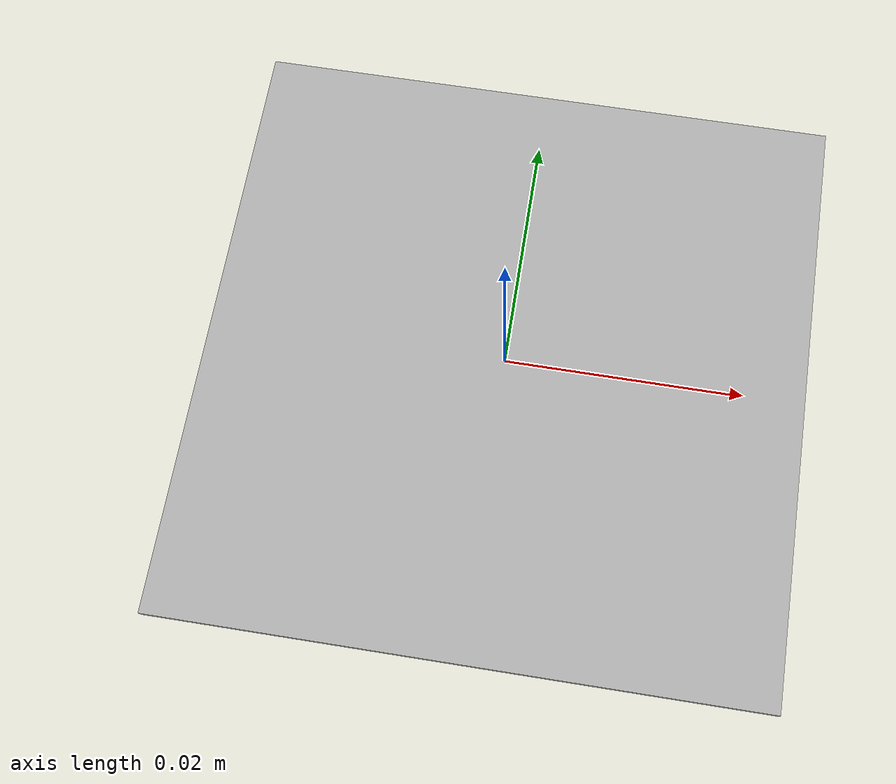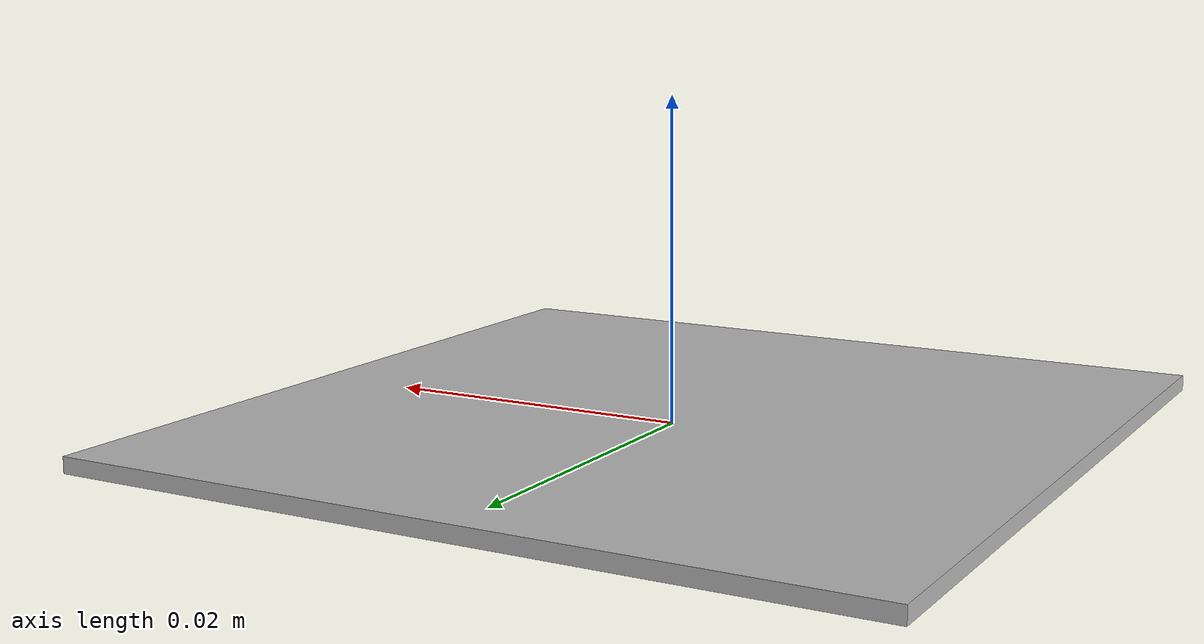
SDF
<?xml version="1.0" ?>
<sdf version="1.5">
  <model name="marker_0">
    <link name="link">
      <gravity>false</gravity>
      <inertial>
        <pose>0 0 0 0 0 0</pose>
        <mass>0.2</mass>
        <inertia>
          <ixx>0.00079</ixx>
          <ixy>0</ixy>
          <ixz>0</ixz>
          <iyy>0.00079</iyy>
          <iyz>0</iyz>
          <izz>0.00025</izz>
        </inertia>
      </inertial>
      <visual name="visual">
        <pose>0 0 0 0 0 0</pose>
        <geometry>
          <mesh>
            <uri>model://marker_0/meshes/marker_0.dae</uri>
          </mesh>
        </geometry>
      </visual>
    </link>
  </model>
</sdf>
